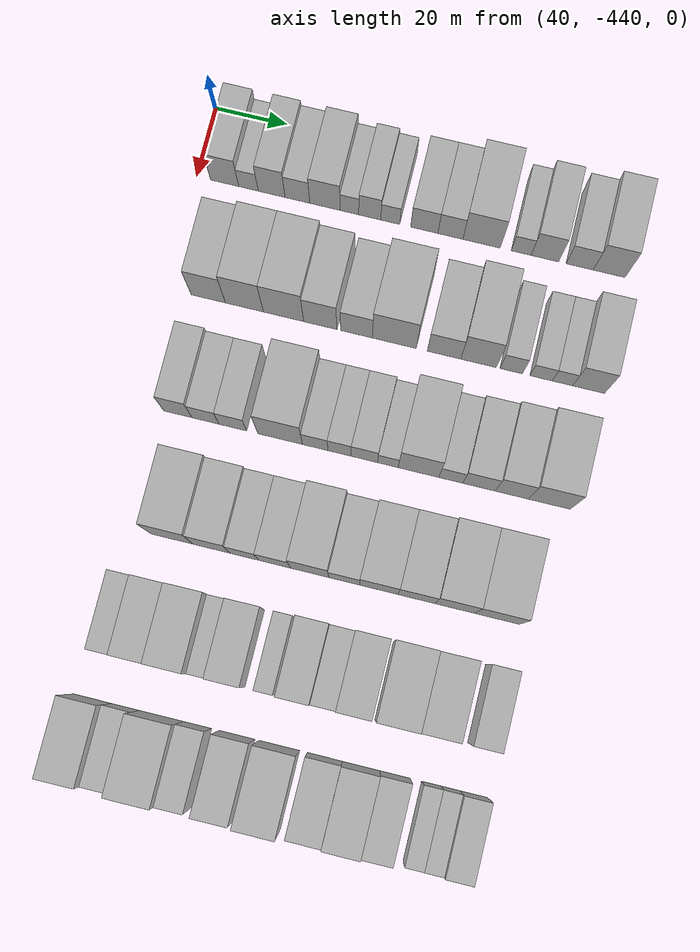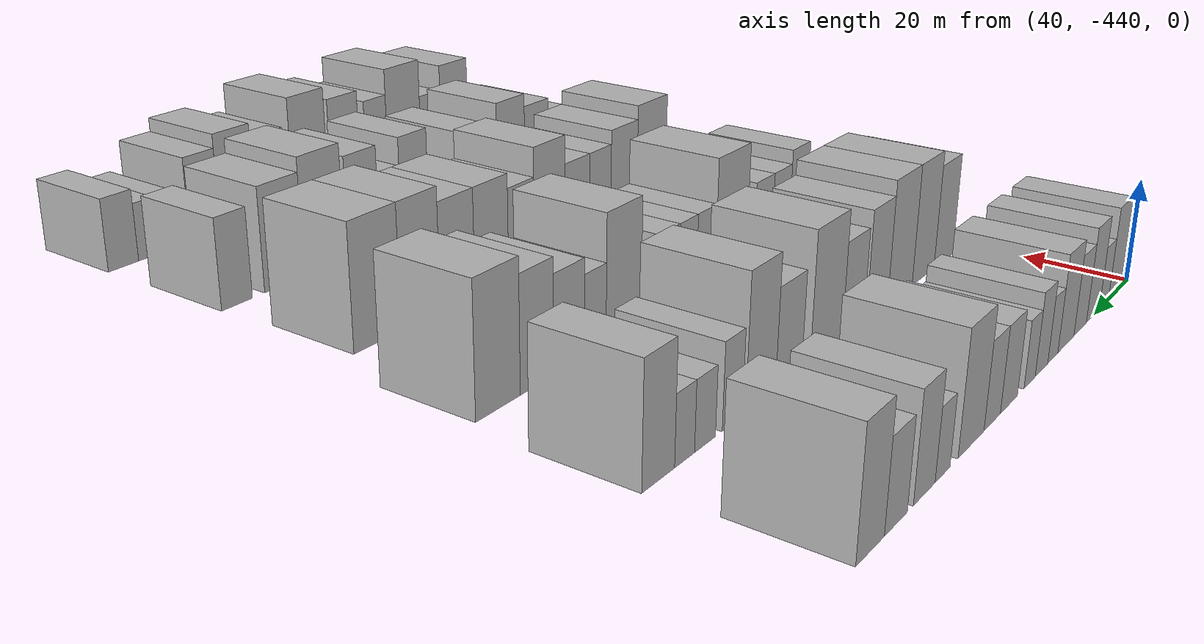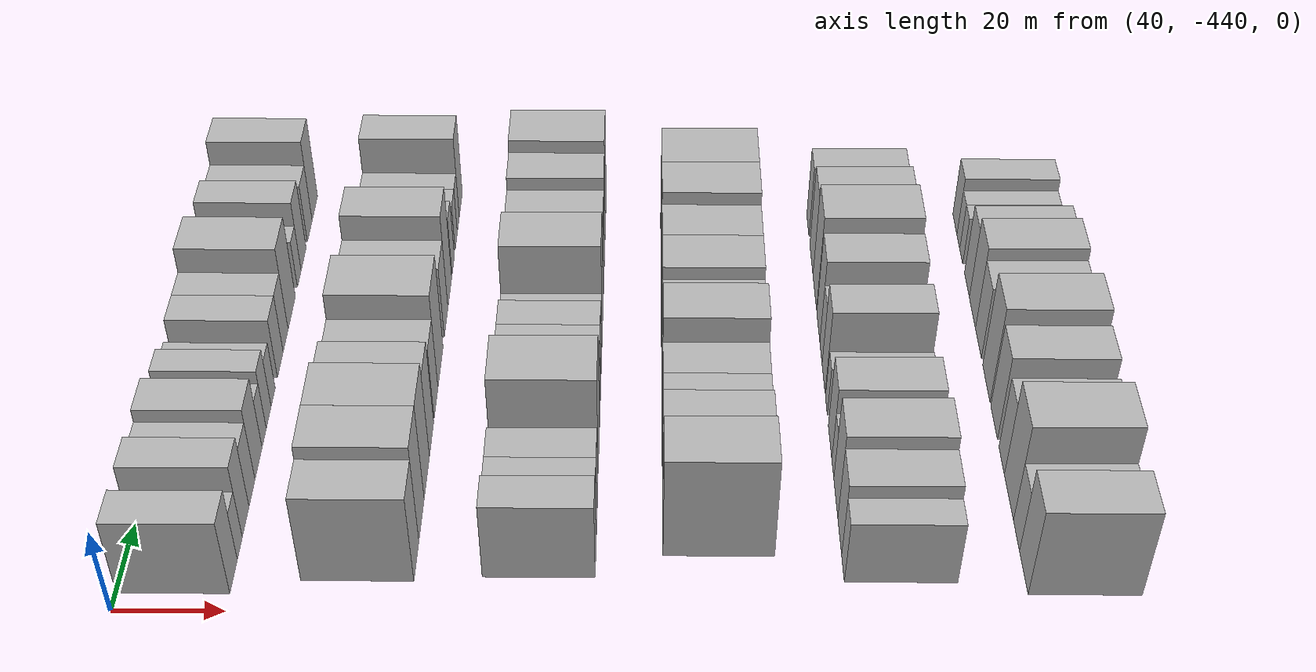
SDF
<sdf version="1.6">
 <world name="default">
  <model name="building_13">
   <static>1</static>
   <pose>50.0000 -432.1730 0 0.000000 0.000000 0.000000</pose>
   <link name="link">
    <pose>0 0 9.00 0 0 0</pose>
    <collision name="collision"><geometry><box><size>20.0000 7.7994 18.0000</size></box></geometry></collision>
    <visual name="visual">
     <cast_shadows>0</cast_shadows>
     <geometry><box><size>20.0000 7.7994 18.0000</size></box></geometry>
     <material>
      <script>
       <uri>model://HANNAS_wall/materials/scripts</uri>
       <uri>model://HANNAS_wall/materials/textures</uri>
       <name>vrc/HANNAS_wall</name>
      </script>
     </material>
    </visual>
   </link>
  </model>
  <model name="building_14">
   <static>1</static>
   <pose>50.0000 -425.5809 0 0.000000 0.000000 0.000000</pose>
   <link name="link">
    <pose>0 0 6.00 0 0 0</pose>
    <collision name="collision"><geometry><box><size>20.0000 5.3847 12.0000</size></box></geometry></collision>
    <visual name="visual">
     <cast_shadows>0</cast_shadows>
     <geometry><box><size>20.0000 5.3847 12.0000</size></box></geometry>
     <material>
      <script>
       <uri>model://HANNAS_wall/materials/scripts</uri>
       <uri>model://HANNAS_wall/materials/textures</uri>
       <name>vrc/HANNAS_wall</name>
      </script>
     </material>
    </visual>
   </link>
  </model>
  <model name="building_15">
   <static>1</static>
   <pose>50.0000 -419.1821 0 0.000000 0.000000 0.000000</pose>
   <link name="link">
    <pose>0 0 9.00 0 0 0</pose>
    <collision name="collision"><geometry><box><size>20.0000 7.4129 18.0000</size></box></geometry></collision>
    <visual name="visual">
     <cast_shadows>0</cast_shadows>
     <geometry><box><size>20.0000 7.4129 18.0000</size></box></geometry>
     <material>
      <script>
       <uri>model://HANNAS_wall/materials/scripts</uri>
       <uri>model://HANNAS_wall/materials/textures</uri>
       <name>vrc/HANNAS_wall</name>
      </script>
     </material>
    </visual>
   </link>
  </model>
  <model name="building_16">
   <static>1</static>
   <pose>50.0000 -412.0602 0 0.000000 0.000000 0.000000</pose>
   <link name="link">
    <pose>0 0 7.50 0 0 0</pose>
    <collision name="collision"><geometry><box><size>20.0000 6.8310 15.0000</size></box></geometry></collision>
    <visual name="visual">
     <cast_shadows>0</cast_shadows>
     <geometry><box><size>20.0000 6.8310 15.0000</size></box></geometry>
     <material>
      <script>
       <uri>model://HANNAS_wall/materials/scripts</uri>
       <uri>model://HANNAS_wall/materials/textures</uri>
       <name>vrc/HANNAS_wall</name>
      </script>
     </material>
    </visual>
   </link>
  </model>
  <model name="building_17">
   <static>1</static>
   <pose>50.0000 -404.4424 0 0.000000 0.000000 0.000000</pose>
   <link name="link">
    <pose>0 0 9.00 0 0 0</pose>
    <collision name="collision"><geometry><box><size>20.0000 8.4046 18.0000</size></box></geometry></collision>
    <visual name="visual">
     <cast_shadows>0</cast_shadows>
     <geometry><box><size>20.0000 8.4046 18.0000</size></box></geometry>
     <material>
      <script>
       <uri>model://HANNAS_wall/materials/scripts</uri>
       <uri>model://HANNAS_wall/materials/textures</uri>
       <name>vrc/HANNAS_wall</name>
      </script>
     </material>
    </visual>
   </link>
  </model>
  <model name="building_18">
   <static>1</static>
   <pose>50.0000 -397.7037 0 0.000000 0.000000 0.000000</pose>
   <link name="link">
    <pose>0 0 6.00 0 0 0</pose>
    <collision name="collision"><geometry><box><size>20.0000 5.0729 12.0000</size></box></geometry></collision>
    <visual name="visual">
     <cast_shadows>0</cast_shadows>
     <geometry><box><size>20.0000 5.0729 12.0000</size></box></geometry>
     <material>
      <script>
       <uri>model://HANNAS_wall/materials/scripts</uri>
       <uri>model://HANNAS_wall/materials/textures</uri>
       <name>vrc/HANNAS_wall</name>
      </script>
     </material>
    </visual>
   </link>
  </model>
  <model name="building_19">
   <static>1</static>
   <pose>50.0000 -392.1365 0 0.000000 0.000000 0.000000</pose>
   <link name="link">
    <pose>0 0 7.50 0 0 0</pose>
    <collision name="collision"><geometry><box><size>20.0000 6.0615 15.0000</size></box></geometry></collision>
    <visual name="visual">
     <cast_shadows>0</cast_shadows>
     <geometry><box><size>20.0000 6.0615 15.0000</size></box></geometry>
     <material>
      <script>
       <uri>model://HANNAS_wall/materials/scripts</uri>
       <uri>model://HANNAS_wall/materials/textures</uri>
       <name>vrc/HANNAS_wall</name>
      </script>
     </material>
    </visual>
   </link>
  </model>
  <model name="building_20">
   <static>1</static>
   <pose>50.0000 -386.4969 0 0.000000 0.000000 0.000000</pose>
   <link name="link">
    <pose>0 0 6.00 0 0 0</pose>
    <collision name="collision"><geometry><box><size>20.0000 5.2177 12.0000</size></box></geometry></collision>
    <visual name="visual">
     <cast_shadows>0</cast_shadows>
     <geometry><box><size>20.0000 5.2177 12.0000</size></box></geometry>
     <material>
      <script>
       <uri>model://HANNAS_wall/materials/scripts</uri>
       <uri>model://HANNAS_wall/materials/textures</uri>
       <name>vrc/HANNAS_wall</name>
      </script>
     </material>
    </visual>
   </link>
  </model>
  <model name="building_21">
   <static>1</static>
   <pose>50.0000 -377.1596 0 0.000000 0.000000 0.000000</pose>
   <link name="link">
    <pose>0 0 7.50 0 0 0</pose>
    <collision name="collision"><geometry><box><size>20.0000 7.4570 15.0000</size></box></geometry></collision>
    <visual name="visual">
     <cast_shadows>0</cast_shadows>
     <geometry><box><size>20.0000 7.4570 15.0000</size></box></geometry>
     <material>
      <script>
       <uri>model://HANNAS_wall/materials/scripts</uri>
       <uri>model://HANNAS_wall/materials/textures</uri>
       <name>vrc/HANNAS_wall</name>
      </script>
     </material>
    </visual>
   </link>
  </model>
  <model name="building_22">
   <static>1</static>
   <pose>50.0000 -370.0108 0 0.000000 0.000000 0.000000</pose>
   <link name="link">
    <pose>0 0 7.50 0 0 0</pose>
    <collision name="collision"><geometry><box><size>20.0000 6.8404 15.0000</size></box></geometry></collision>
    <visual name="visual">
     <cast_shadows>0</cast_shadows>
     <geometry><box><size>20.0000 6.8404 15.0000</size></box></geometry>
     <material>
      <script>
       <uri>model://HANNAS_wall/materials/scripts</uri>
       <uri>model://HANNAS_wall/materials/textures</uri>
       <name>vrc/HANNAS_wall</name>
      </script>
     </material>
    </visual>
   </link>
  </model>
  <model name="building_23">
   <static>1</static>
   <pose>50.0000 -361.4864 0 0.000000 0.000000 0.000000</pose>
   <link name="link">
    <pose>0 0 10.50 0 0 0</pose>
    <collision name="collision"><geometry><box><size>20.0000 10.2085 21.0000</size></box></geometry></collision>
    <visual name="visual">
     <cast_shadows>0</cast_shadows>
     <geometry><box><size>20.0000 10.2085 21.0000</size></box></geometry>
     <material>
      <script>
       <uri>model://HANNAS_wall/materials/scripts</uri>
       <uri>model://HANNAS_wall/materials/textures</uri>
       <name>vrc/HANNAS_wall</name>
      </script>
     </material>
    </visual>
   </link>
  </model>
  <model name="building_24">
   <static>1</static>
   <pose>50.0000 -350.6740 0 0.000000 0.000000 0.000000</pose>
   <link name="link">
    <pose>0 0 6.00 0 0 0</pose>
    <collision name="collision"><geometry><box><size>20.0000 5.4163 12.0000</size></box></geometry></collision>
    <visual name="visual">
     <cast_shadows>0</cast_shadows>
     <geometry><box><size>20.0000 5.4163 12.0000</size></box></geometry>
     <material>
      <script>
       <uri>model://HANNAS_wall/materials/scripts</uri>
       <uri>model://HANNAS_wall/materials/textures</uri>
       <name>vrc/HANNAS_wall</name>
      </script>
     </material>
    </visual>
   </link>
  </model>
  <model name="building_25">
   <static>1</static>
   <pose>50.0000 -344.2014 0 0.000000 0.000000 0.000000</pose>
   <link name="link">
    <pose>0 0 9.00 0 0 0</pose>
    <collision name="collision"><geometry><box><size>20.0000 7.5288 18.0000</size></box></geometry></collision>
    <visual name="visual">
     <cast_shadows>0</cast_shadows>
     <geometry><box><size>20.0000 7.5288 18.0000</size></box></geometry>
     <material>
      <script>
       <uri>model://HANNAS_wall/materials/scripts</uri>
       <uri>model://HANNAS_wall/materials/textures</uri>
       <name>vrc/HANNAS_wall</name>
      </script>
     </material>
    </visual>
   </link>
  </model>
  <model name="building_26">
   <static>1</static>
   <pose>50.0000 -334.7471 0 0.000000 0.000000 0.000000</pose>
   <link name="link">
    <pose>0 0 7.50 0 0 0</pose>
    <collision name="collision"><geometry><box><size>20.0000 7.3799 15.0000</size></box></geometry></collision>
    <visual name="visual">
     <cast_shadows>0</cast_shadows>
     <geometry><box><size>20.0000 7.3799 15.0000</size></box></geometry>
     <material>
      <script>
       <uri>model://HANNAS_wall/materials/scripts</uri>
       <uri>model://HANNAS_wall/materials/textures</uri>
       <name>vrc/HANNAS_wall</name>
      </script>
     </material>
    </visual>
   </link>
  </model>
  <model name="building_27">
   <static>1</static>
   <pose>50.0000 -326.7229 0 0.000000 0.000000 0.000000</pose>
   <link name="link">
    <pose>0 0 10.50 0 0 0</pose>
    <collision name="collision"><geometry><box><size>20.0000 8.6684 21.0000</size></box></geometry></collision>
    <visual name="visual">
     <cast_shadows>0</cast_shadows>
     <geometry><box><size>20.0000 8.6684 21.0000</size></box></geometry>
     <material>
      <script>
       <uri>model://HANNAS_wall/materials/scripts</uri>
       <uri>model://HANNAS_wall/materials/textures</uri>
       <name>vrc/HANNAS_wall</name>
      </script>
     </material>
    </visual>
   </link>
  </model>
  <model name="building_143">
   <static>1</static>
   <pose>82.0000 -428.2950 0 0.000000 0.000000 0.000000</pose>
   <link name="link">
    <pose>0 0 10.50 0 0 0</pose>
    <collision name="collision"><geometry><box><size>20.0000 9.3728 21.0000</size></box></geometry></collision>
    <visual name="visual">
     <cast_shadows>0</cast_shadows>
     <geometry><box><size>20.0000 9.3728 21.0000</size></box></geometry>
     <material>
      <script>
       <uri>model://HANNAS_wall/materials/scripts</uri>
       <uri>model://HANNAS_wall/materials/textures</uri>
       <name>vrc/HANNAS_wall</name>
      </script>
     </material>
    </visual>
   </link>
  </model>
  <model name="building_144">
   <static>1</static>
   <pose>82.0000 -418.4367 0 0.000000 0.000000 0.000000</pose>
   <link name="link">
    <pose>0 0 12.00 0 0 0</pose>
    <collision name="collision"><geometry><box><size>20.0000 10.3438 24.0000</size></box></geometry></collision>
    <visual name="visual">
     <cast_shadows>0</cast_shadows>
     <geometry><box><size>20.0000 10.3438 24.0000</size></box></geometry>
     <material>
      <script>
       <uri>model://HANNAS_wall/materials/scripts</uri>
       <uri>model://HANNAS_wall/materials/textures</uri>
       <name>vrc/HANNAS_wall</name>
      </script>
     </material>
    </visual>
   </link>
  </model>
  <model name="building_145">
   <static>1</static>
   <pose>82.0000 -407.7713 0 0.000000 0.000000 0.000000</pose>
   <link name="link">
    <pose>0 0 12.00 0 0 0</pose>
    <collision name="collision"><geometry><box><size>20.0000 10.9871 24.0000</size></box></geometry></collision>
    <visual name="visual">
     <cast_shadows>0</cast_shadows>
     <geometry><box><size>20.0000 10.9871 24.0000</size></box></geometry>
     <material>
      <script>
       <uri>model://HANNAS_wall/materials/scripts</uri>
       <uri>model://HANNAS_wall/materials/textures</uri>
       <name>vrc/HANNAS_wall</name>
      </script>
     </material>
    </visual>
   </link>
  </model>
  <model name="building_146">
   <static>1</static>
   <pose>82.0000 -397.7547 0 0.000000 0.000000 0.000000</pose>
   <link name="link">
    <pose>0 0 10.50 0 0 0</pose>
    <collision name="collision"><geometry><box><size>20.0000 9.0461 21.0000</size></box></geometry></collision>
    <visual name="visual">
     <cast_shadows>0</cast_shadows>
     <geometry><box><size>20.0000 9.0461 21.0000</size></box></geometry>
     <material>
      <script>
       <uri>model://HANNAS_wall/materials/scripts</uri>
       <uri>model://HANNAS_wall/materials/textures</uri>
       <name>vrc/HANNAS_wall</name>
      </script>
     </material>
    </visual>
   </link>
  </model>
  <model name="building_147">
   <static>1</static>
   <pose>82.0000 -387.9372 0 0.000000 0.000000 0.000000</pose>
   <link name="link">
    <pose>0 0 9.00 0 0 0</pose>
    <collision name="collision"><geometry><box><size>20.0000 8.5890 18.0000</size></box></geometry></collision>
    <visual name="visual">
     <cast_shadows>0</cast_shadows>
     <geometry><box><size>20.0000 8.5890 18.0000</size></box></geometry>
     <material>
      <script>
       <uri>model://HANNAS_wall/materials/scripts</uri>
       <uri>model://HANNAS_wall/materials/textures</uri>
       <name>vrc/HANNAS_wall</name>
      </script>
     </material>
    </visual>
   </link>
  </model>
  <model name="building_148">
   <static>1</static>
   <pose>82.0000 -377.6961 0 0.000000 0.000000 0.000000</pose>
   <link name="link">
    <pose>0 0 12.00 0 0 0</pose>
    <collision name="collision"><geometry><box><size>20.0000 11.8932 24.0000</size></box></geometry></collision>
    <visual name="visual">
     <cast_shadows>0</cast_shadows>
     <geometry><box><size>20.0000 11.8932 24.0000</size></box></geometry>
     <material>
      <script>
       <uri>model://HANNAS_wall/materials/scripts</uri>
       <uri>model://HANNAS_wall/materials/textures</uri>
       <name>vrc/HANNAS_wall</name>
      </script>
     </material>
    </visual>
   </link>
  </model>
  <model name="building_149">
   <static>1</static>
   <pose>82.0000 -364.2545 0 0.000000 0.000000 0.000000</pose>
   <link name="link">
    <pose>0 0 9.00 0 0 0</pose>
    <collision name="collision"><geometry><box><size>20.0000 8.9899 18.0000</size></box></geometry></collision>
    <visual name="visual">
     <cast_shadows>0</cast_shadows>
     <geometry><box><size>20.0000 8.9899 18.0000</size></box></geometry>
     <material>
      <script>
       <uri>model://HANNAS_wall/materials/scripts</uri>
       <uri>model://HANNAS_wall/materials/textures</uri>
       <name>vrc/HANNAS_wall</name>
      </script>
     </material>
    </visual>
   </link>
  </model>
  <model name="building_150">
   <static>1</static>
   <pose>82.0000 -354.9500 0 0.000000 0.000000 0.000000</pose>
   <link name="link">
    <pose>0 0 12.00 0 0 0</pose>
    <collision name="collision"><geometry><box><size>20.0000 9.6192 24.0000</size></box></geometry></collision>
    <visual name="visual">
     <cast_shadows>0</cast_shadows>
     <geometry><box><size>20.0000 9.6192 24.0000</size></box></geometry>
     <material>
      <script>
       <uri>model://HANNAS_wall/materials/scripts</uri>
       <uri>model://HANNAS_wall/materials/textures</uri>
       <name>vrc/HANNAS_wall</name>
      </script>
     </material>
    </visual>
   </link>
  </model>
  <model name="building_151">
   <static>1</static>
   <pose>82.0000 -346.1169 0 0.000000 0.000000 0.000000</pose>
   <link name="link">
    <pose>0 0 7.50 0 0 0</pose>
    <collision name="collision"><geometry><box><size>20.0000 6.0468 15.0000</size></box></geometry></collision>
    <visual name="visual">
     <cast_shadows>0</cast_shadows>
     <geometry><box><size>20.0000 6.0468 15.0000</size></box></geometry>
     <material>
      <script>
       <uri>model://HANNAS_wall/materials/scripts</uri>
       <uri>model://HANNAS_wall/materials/textures</uri>
       <name>vrc/HANNAS_wall</name>
      </script>
     </material>
    </visual>
   </link>
  </model>
  <model name="building_152">
   <static>1</static>
   <pose>82.0000 -338.1036 0 0.000000 0.000000 0.000000</pose>
   <link name="link">
    <pose>0 0 6.00 0 0 0</pose>
    <collision name="collision"><geometry><box><size>20.0000 5.9798 12.0000</size></box></geometry></collision>
    <visual name="visual">
     <cast_shadows>0</cast_shadows>
     <geometry><box><size>20.0000 5.9798 12.0000</size></box></geometry>
     <material>
      <script>
       <uri>model://HANNAS_wall/materials/scripts</uri>
       <uri>model://HANNAS_wall/materials/textures</uri>
       <name>vrc/HANNAS_wall</name>
      </script>
     </material>
    </visual>
   </link>
  </model>
  <model name="building_153">
   <static>1</static>
   <pose>82.0000 -332.3692 0 0.000000 0.000000 0.000000</pose>
   <link name="link">
    <pose>0 0 6.00 0 0 0</pose>
    <collision name="collision"><geometry><box><size>20.0000 5.4891 12.0000</size></box></geometry></collision>
    <visual name="visual">
     <cast_shadows>0</cast_shadows>
     <geometry><box><size>20.0000 5.4891 12.0000</size></box></geometry>
     <material>
      <script>
       <uri>model://HANNAS_wall/materials/scripts</uri>
       <uri>model://HANNAS_wall/materials/textures</uri>
       <name>vrc/HANNAS_wall</name>
      </script>
     </material>
    </visual>
   </link>
  </model>
  <model name="building_154">
   <static>1</static>
   <pose>82.0000 -325.3333 0 0.000000 0.000000 0.000000</pose>
   <link name="link">
    <pose>0 0 10.50 0 0 0</pose>
    <collision name="collision"><geometry><box><size>20.0000 8.5825 21.0000</size></box></geometry></collision>
    <visual name="visual">
     <cast_shadows>0</cast_shadows>
     <geometry><box><size>20.0000 8.5825 21.0000</size></box></geometry>
     <material>
      <script>
       <uri>model://HANNAS_wall/materials/scripts</uri>
       <uri>model://HANNAS_wall/materials/textures</uri>
       <name>vrc/HANNAS_wall</name>
      </script>
     </material>
    </visual>
   </link>
  </model>
  <model name="building_272">
   <static>1</static>
   <pose>114.0000 -428.0911 0 0.000000 0.000000 0.000000</pose>
   <link name="link">
    <pose>0 0 9.00 0 0 0</pose>
    <collision name="collision"><geometry><box><size>20.0000 7.6597 18.0000</size></box></geometry></collision>
    <visual name="visual">
     <cast_shadows>0</cast_shadows>
     <geometry><box><size>20.0000 7.6597 18.0000</size></box></geometry>
     <material>
      <script>
       <uri>model://HANNAS_wall/materials/scripts</uri>
       <uri>model://HANNAS_wall/materials/textures</uri>
       <name>vrc/HANNAS_wall</name>
      </script>
     </material>
    </visual>
   </link>
  </model>
  <model name="building_273">
   <static>1</static>
   <pose>114.0000 -420.5976 0 0.000000 0.000000 0.000000</pose>
   <link name="link">
    <pose>0 0 7.50 0 0 0</pose>
    <collision name="collision"><geometry><box><size>20.0000 7.3273 15.0000</size></box></geometry></collision>
    <visual name="visual">
     <cast_shadows>0</cast_shadows>
     <geometry><box><size>20.0000 7.3273 15.0000</size></box></geometry>
     <material>
      <script>
       <uri>model://HANNAS_wall/materials/scripts</uri>
       <uri>model://HANNAS_wall/materials/textures</uri>
       <name>vrc/HANNAS_wall</name>
      </script>
     </material>
    </visual>
   </link>
  </model>
  <model name="building_274">
   <static>1</static>
   <pose>114.0000 -413.2297 0 0.000000 0.000000 0.000000</pose>
   <link name="link">
    <pose>0 0 7.50 0 0 0</pose>
    <collision name="collision"><geometry><box><size>20.0000 7.4084 15.0000</size></box></geometry></collision>
    <visual name="visual">
     <cast_shadows>0</cast_shadows>
     <geometry><box><size>20.0000 7.4084 15.0000</size></box></geometry>
     <material>
      <script>
       <uri>model://HANNAS_wall/materials/scripts</uri>
       <uri>model://HANNAS_wall/materials/textures</uri>
       <name>vrc/HANNAS_wall</name>
      </script>
     </material>
    </visual>
   </link>
  </model>
  <model name="building_275">
   <static>1</static>
   <pose>114.0000 -400.5274 0 0.000000 0.000000 0.000000</pose>
   <link name="link">
    <pose>0 0 12.00 0 0 0</pose>
    <collision name="collision"><geometry><box><size>20.0000 11.9961 24.0000</size></box></geometry></collision>
    <visual name="visual">
     <cast_shadows>0</cast_shadows>
     <geometry><box><size>20.0000 11.9961 24.0000</size></box></geometry>
     <material>
      <script>
       <uri>model://HANNAS_wall/materials/scripts</uri>
       <uri>model://HANNAS_wall/materials/textures</uri>
       <name>vrc/HANNAS_wall</name>
      </script>
     </material>
    </visual>
   </link>
  </model>
  <model name="building_276">
   <static>1</static>
   <pose>114.0000 -391.1068 0 0.000000 0.000000 0.000000</pose>
   <link name="link">
    <pose>0 0 7.50 0 0 0</pose>
    <collision name="collision"><geometry><box><size>20.0000 6.8453 15.0000</size></box></geometry></collision>
    <visual name="visual">
     <cast_shadows>0</cast_shadows>
     <geometry><box><size>20.0000 6.8453 15.0000</size></box></geometry>
     <material>
      <script>
       <uri>model://HANNAS_wall/materials/scripts</uri>
       <uri>model://HANNAS_wall/materials/textures</uri>
       <name>vrc/HANNAS_wall</name>
      </script>
     </material>
    </visual>
   </link>
  </model>
  <model name="building_277">
   <static>1</static>
   <pose>114.0000 -384.5838 0 0.000000 0.000000 0.000000</pose>
   <link name="link">
    <pose>0 0 7.50 0 0 0</pose>
    <collision name="collision"><geometry><box><size>20.0000 6.2007 15.0000</size></box></geometry></collision>
    <visual name="visual">
     <cast_shadows>0</cast_shadows>
     <geometry><box><size>20.0000 6.2007 15.0000</size></box></geometry>
     <material>
      <script>
       <uri>model://HANNAS_wall/materials/scripts</uri>
       <uri>model://HANNAS_wall/materials/textures</uri>
       <name>vrc/HANNAS_wall</name>
      </script>
     </material>
    </visual>
   </link>
  </model>
  <model name="building_278">
   <static>1</static>
   <pose>114.0000 -377.9591 0 0.000000 0.000000 0.000000</pose>
   <link name="link">
    <pose>0 0 7.50 0 0 0</pose>
    <collision name="collision"><geometry><box><size>20.0000 7.0487 15.0000</size></box></geometry></collision>
    <visual name="visual">
     <cast_shadows>0</cast_shadows>
     <geometry><box><size>20.0000 7.0487 15.0000</size></box></geometry>
     <material>
      <script>
       <uri>model://HANNAS_wall/materials/scripts</uri>
       <uri>model://HANNAS_wall/materials/textures</uri>
       <name>vrc/HANNAS_wall</name>
      </script>
     </material>
    </visual>
   </link>
  </model>
  <model name="building_279">
   <static>1</static>
   <pose>114.0000 -371.6705 0 0.000000 0.000000 0.000000</pose>
   <link name="link">
    <pose>0 0 6.00 0 0 0</pose>
    <collision name="collision"><geometry><box><size>20.0000 5.5284 12.0000</size></box></geometry></collision>
    <visual name="visual">
     <cast_shadows>0</cast_shadows>
     <geometry><box><size>20.0000 5.5284 12.0000</size></box></geometry>
     <material>
      <script>
       <uri>model://HANNAS_wall/materials/scripts</uri>
       <uri>model://HANNAS_wall/materials/textures</uri>
       <name>vrc/HANNAS_wall</name>
      </script>
     </material>
    </visual>
   </link>
  </model>
  <model name="building_280">
   <static>1</static>
   <pose>114.0000 -363.5157 0 0.000000 0.000000 0.000000</pose>
   <link name="link">
    <pose>0 0 12.00 0 0 0</pose>
    <collision name="collision"><geometry><box><size>20.0000 10.7811 24.0000</size></box></geometry></collision>
    <visual name="visual">
     <cast_shadows>0</cast_shadows>
     <geometry><box><size>20.0000 10.7811 24.0000</size></box></geometry>
     <material>
      <script>
       <uri>model://HANNAS_wall/materials/scripts</uri>
       <uri>model://HANNAS_wall/materials/textures</uri>
       <name>vrc/HANNAS_wall</name>
      </script>
     </material>
    </visual>
   </link>
  </model>
  <model name="building_281">
   <static>1</static>
   <pose>114.0000 -354.9187 0 0.000000 0.000000 0.000000</pose>
   <link name="link">
    <pose>0 0 7.50 0 0 0</pose>
    <collision name="collision"><geometry><box><size>20.0000 6.4128 15.0000</size></box></geometry></collision>
    <visual name="visual">
     <cast_shadows>0</cast_shadows>
     <geometry><box><size>20.0000 6.4128 15.0000</size></box></geometry>
     <material>
      <script>
       <uri>model://HANNAS_wall/materials/scripts</uri>
       <uri>model://HANNAS_wall/materials/textures</uri>
       <name>vrc/HANNAS_wall</name>
      </script>
     </material>
    </visual>
   </link>
  </model>
  <model name="building_282">
   <static>1</static>
   <pose>114.0000 -347.4107 0 0.000000 0.000000 0.000000</pose>
   <link name="link">
    <pose>0 0 9.00 0 0 0</pose>
    <collision name="collision"><geometry><box><size>20.0000 8.6032 18.0000</size></box></geometry></collision>
    <visual name="visual">
     <cast_shadows>0</cast_shadows>
     <geometry><box><size>20.0000 8.6032 18.0000</size></box></geometry>
     <material>
      <script>
       <uri>model://HANNAS_wall/materials/scripts</uri>
       <uri>model://HANNAS_wall/materials/textures</uri>
       <name>vrc/HANNAS_wall</name>
      </script>
     </material>
    </visual>
   </link>
  </model>
  <model name="building_283">
   <static>1</static>
   <pose>114.0000 -338.7049 0 0.000000 0.000000 0.000000</pose>
   <link name="link">
    <pose>0 0 10.50 0 0 0</pose>
    <collision name="collision"><geometry><box><size>20.0000 8.8086 21.0000</size></box></geometry></collision>
    <visual name="visual">
     <cast_shadows>0</cast_shadows>
     <geometry><box><size>20.0000 8.8086 21.0000</size></box></geometry>
     <material>
      <script>
       <uri>model://HANNAS_wall/materials/scripts</uri>
       <uri>model://HANNAS_wall/materials/textures</uri>
       <name>vrc/HANNAS_wall</name>
      </script>
     </material>
    </visual>
   </link>
  </model>
  <model name="building_284">
   <static>1</static>
   <pose>114.0000 -328.7453 0 0.000000 0.000000 0.000000</pose>
   <link name="link">
    <pose>0 0 12.00 0 0 0</pose>
    <collision name="collision"><geometry><box><size>20.0000 11.1106 24.0000</size></box></geometry></collision>
    <visual name="visual">
     <cast_shadows>0</cast_shadows>
     <geometry><box><size>20.0000 11.1106 24.0000</size></box></geometry>
     <material>
      <script>
       <uri>model://HANNAS_wall/materials/scripts</uri>
       <uri>model://HANNAS_wall/materials/textures</uri>
       <name>vrc/HANNAS_wall</name>
      </script>
     </material>
    </visual>
   </link>
  </model>
  <model name="building_395">
   <static>1</static>
   <pose>146.0000 -421.0519 0 0.000000 0.000000 0.000000</pose>
   <link name="link">
    <pose>0 0 12.00 0 0 0</pose>
    <collision name="collision"><geometry><box><size>20.0000 11.3019 24.0000</size></box></geometry></collision>
    <visual name="visual">
     <cast_shadows>0</cast_shadows>
     <geometry><box><size>20.0000 11.3019 24.0000</size></box></geometry>
     <material>
      <script>
       <uri>model://HANNAS_wall/materials/scripts</uri>
       <uri>model://HANNAS_wall/materials/textures</uri>
       <name>vrc/HANNAS_wall</name>
      </script>
     </material>
    </visual>
   </link>
  </model>
  <model name="building_396">
   <static>1</static>
   <pose>146.0000 -410.5173 0 0.000000 0.000000 0.000000</pose>
   <link name="link">
    <pose>0 0 10.50 0 0 0</pose>
    <collision name="collision"><geometry><box><size>20.0000 9.7673 21.0000</size></box></geometry></collision>
    <visual name="visual">
     <cast_shadows>0</cast_shadows>
     <geometry><box><size>20.0000 9.7673 21.0000</size></box></geometry>
     <material>
      <script>
       <uri>model://HANNAS_wall/materials/scripts</uri>
       <uri>model://HANNAS_wall/materials/textures</uri>
       <name>vrc/HANNAS_wall</name>
      </script>
     </material>
    </visual>
   </link>
  </model>
  <model name="building_397">
   <static>1</static>
   <pose>146.0000 -401.8488 0 0.000000 0.000000 0.000000</pose>
   <link name="link">
    <pose>0 0 9.00 0 0 0</pose>
    <collision name="collision"><geometry><box><size>20.0000 7.5696 18.0000</size></box></geometry></collision>
    <visual name="visual">
     <cast_shadows>0</cast_shadows>
     <geometry><box><size>20.0000 7.5696 18.0000</size></box></geometry>
     <material>
      <script>
       <uri>model://HANNAS_wall/materials/scripts</uri>
       <uri>model://HANNAS_wall/materials/textures</uri>
       <name>vrc/HANNAS_wall</name>
      </script>
     </material>
    </visual>
   </link>
  </model>
  <model name="building_398">
   <static>1</static>
   <pose>146.0000 -393.8298 0 0.000000 0.000000 0.000000</pose>
   <link name="link">
    <pose>0 0 9.00 0 0 0</pose>
    <collision name="collision"><geometry><box><size>20.0000 8.4684 18.0000</size></box></geometry></collision>
    <visual name="visual">
     <cast_shadows>0</cast_shadows>
     <geometry><box><size>20.0000 8.4684 18.0000</size></box></geometry>
     <material>
      <script>
       <uri>model://HANNAS_wall/materials/scripts</uri>
       <uri>model://HANNAS_wall/materials/textures</uri>
       <name>vrc/HANNAS_wall</name>
      </script>
     </material>
    </visual>
   </link>
  </model>
  <model name="building_399">
   <static>1</static>
   <pose>146.0000 -384.5340 0 0.000000 0.000000 0.000000</pose>
   <link name="link">
    <pose>0 0 12.00 0 0 0</pose>
    <collision name="collision"><geometry><box><size>20.0000 10.1233 24.0000</size></box></geometry></collision>
    <visual name="visual">
     <cast_shadows>0</cast_shadows>
     <geometry><box><size>20.0000 10.1233 24.0000</size></box></geometry>
     <material>
      <script>
       <uri>model://HANNAS_wall/materials/scripts</uri>
       <uri>model://HANNAS_wall/materials/textures</uri>
       <name>vrc/HANNAS_wall</name>
      </script>
     </material>
    </visual>
   </link>
  </model>
  <model name="building_400">
   <static>1</static>
   <pose>146.0000 -375.4315 0 0.000000 0.000000 0.000000</pose>
   <link name="link">
    <pose>0 0 9.00 0 0 0</pose>
    <collision name="collision"><geometry><box><size>20.0000 8.0817 18.0000</size></box></geometry></collision>
    <visual name="visual">
     <cast_shadows>0</cast_shadows>
     <geometry><box><size>20.0000 8.0817 18.0000</size></box></geometry>
     <material>
      <script>
       <uri>model://HANNAS_wall/materials/scripts</uri>
       <uri>model://HANNAS_wall/materials/textures</uri>
       <name>vrc/HANNAS_wall</name>
      </script>
     </material>
    </visual>
   </link>
  </model>
  <model name="building_401">
   <static>1</static>
   <pose>146.0000 -366.3788 0 0.000000 0.000000 0.000000</pose>
   <link name="link">
    <pose>0 0 10.50 0 0 0</pose>
    <collision name="collision"><geometry><box><size>20.0000 10.0237 21.0000</size></box></geometry></collision>
    <visual name="visual">
     <cast_shadows>0</cast_shadows>
     <geometry><box><size>20.0000 10.0237 21.0000</size></box></geometry>
     <material>
      <script>
       <uri>model://HANNAS_wall/materials/scripts</uri>
       <uri>model://HANNAS_wall/materials/textures</uri>
       <name>vrc/HANNAS_wall</name>
      </script>
     </material>
    </visual>
   </link>
  </model>
  <model name="building_402">
   <static>1</static>
   <pose>146.0000 -356.4903 0 0.000000 0.000000 0.000000</pose>
   <link name="link">
    <pose>0 0 10.50 0 0 0</pose>
    <collision name="collision"><geometry><box><size>20.0000 9.7532 21.0000</size></box></geometry></collision>
    <visual name="visual">
     <cast_shadows>0</cast_shadows>
     <geometry><box><size>20.0000 9.7532 21.0000</size></box></geometry>
     <material>
      <script>
       <uri>model://HANNAS_wall/materials/scripts</uri>
       <uri>model://HANNAS_wall/materials/textures</uri>
       <name>vrc/HANNAS_wall</name>
      </script>
     </material>
    </visual>
   </link>
  </model>
  <model name="building_403">
   <static>1</static>
   <pose>146.0000 -346.3970 0 0.000000 0.000000 0.000000</pose>
   <link name="link">
    <pose>0 0 12.00 0 0 0</pose>
    <collision name="collision"><geometry><box><size>20.0000 10.4333 24.0000</size></box></geometry></collision>
    <visual name="visual">
     <cast_shadows>0</cast_shadows>
     <geometry><box><size>20.0000 10.4333 24.0000</size></box></geometry>
     <material>
      <script>
       <uri>model://HANNAS_wall/materials/scripts</uri>
       <uri>model://HANNAS_wall/materials/textures</uri>
       <name>vrc/HANNAS_wall</name>
      </script>
     </material>
    </visual>
   </link>
  </model>
  <model name="building_404">
   <static>1</static>
   <pose>146.0000 -335.3133 0 0.000000 0.000000 0.000000</pose>
   <link name="link">
    <pose>0 0 12.00 0 0 0</pose>
    <collision name="collision"><geometry><box><size>20.0000 11.7341 24.0000</size></box></geometry></collision>
    <visual name="visual">
     <cast_shadows>0</cast_shadows>
     <geometry><box><size>20.0000 11.7341 24.0000</size></box></geometry>
     <material>
      <script>
       <uri>model://HANNAS_wall/materials/scripts</uri>
       <uri>model://HANNAS_wall/materials/textures</uri>
       <name>vrc/HANNAS_wall</name>
      </script>
     </material>
    </visual>
   </link>
  </model>
  <model name="building_507">
   <static>1</static>
   <pose>178.0000 -429.4739 0 0.000000 0.000000 0.000000</pose>
   <link name="link">
    <pose>0 0 7.50 0 0 0</pose>
    <collision name="collision"><geometry><box><size>20.0000 6.2206 15.0000</size></box></geometry></collision>
    <visual name="visual">
     <cast_shadows>0</cast_shadows>
     <geometry><box><size>20.0000 6.2206 15.0000</size></box></geometry>
     <material>
      <script>
       <uri>model://HANNAS_wall/materials/scripts</uri>
       <uri>model://HANNAS_wall/materials/textures</uri>
       <name>vrc/HANNAS_wall</name>
      </script>
     </material>
    </visual>
   </link>
  </model>
  <model name="building_508">
   <static>1</static>
   <pose>178.0000 -421.8782 0 0.000000 0.000000 0.000000</pose>
   <link name="link">
    <pose>0 0 9.00 0 0 0</pose>
    <collision name="collision"><geometry><box><size>20.0000 8.9708 18.0000</size></box></geometry></collision>
    <visual name="visual">
     <cast_shadows>0</cast_shadows>
     <geometry><box><size>20.0000 8.9708 18.0000</size></box></geometry>
     <material>
      <script>
       <uri>model://HANNAS_wall/materials/scripts</uri>
       <uri>model://HANNAS_wall/materials/textures</uri>
       <name>vrc/HANNAS_wall</name>
      </script>
     </material>
    </visual>
   </link>
  </model>
  <model name="building_509">
   <static>1</static>
   <pose>178.0000 -412.4404 0 0.000000 0.000000 0.000000</pose>
   <link name="link">
    <pose>0 0 10.50 0 0 0</pose>
    <collision name="collision"><geometry><box><size>20.0000 9.9049 21.0000</size></box></geometry></collision>
    <visual name="visual">
     <cast_shadows>0</cast_shadows>
     <geometry><box><size>20.0000 9.9049 21.0000</size></box></geometry>
     <material>
      <script>
       <uri>model://HANNAS_wall/materials/scripts</uri>
       <uri>model://HANNAS_wall/materials/textures</uri>
       <name>vrc/HANNAS_wall</name>
      </script>
     </material>
    </visual>
   </link>
  </model>
  <model name="building_510">
   <static>1</static>
   <pose>178.0000 -404.9702 0 0.000000 0.000000 0.000000</pose>
   <link name="link">
    <pose>0 0 6.00 0 0 0</pose>
    <collision name="collision"><geometry><box><size>20.0000 5.0353 12.0000</size></box></geometry></collision>
    <visual name="visual">
     <cast_shadows>0</cast_shadows>
     <geometry><box><size>20.0000 5.0353 12.0000</size></box></geometry>
     <material>
      <script>
       <uri>model://HANNAS_wall/materials/scripts</uri>
       <uri>model://HANNAS_wall/materials/textures</uri>
       <name>vrc/HANNAS_wall</name>
      </script>
     </material>
    </visual>
   </link>
  </model>
  <model name="building_511">
   <static>1</static>
   <pose>178.0000 -397.9670 0 0.000000 0.000000 0.000000</pose>
   <link name="link">
    <pose>0 0 9.00 0 0 0</pose>
    <collision name="collision"><geometry><box><size>20.0000 8.9711 18.0000</size></box></geometry></collision>
    <visual name="visual">
     <cast_shadows>0</cast_shadows>
     <geometry><box><size>20.0000 8.9711 18.0000</size></box></geometry>
     <material>
      <script>
       <uri>model://HANNAS_wall/materials/scripts</uri>
       <uri>model://HANNAS_wall/materials/textures</uri>
       <name>vrc/HANNAS_wall</name>
      </script>
     </material>
    </visual>
   </link>
  </model>
  <model name="building_512">
   <static>1</static>
   <pose>178.0000 -388.0207 0 0.000000 0.000000 0.000000</pose>
   <link name="link">
    <pose>0 0 6.00 0 0 0</pose>
    <collision name="collision"><geometry><box><size>20.0000 4.9215 12.0000</size></box></geometry></collision>
    <visual name="visual">
     <cast_shadows>0</cast_shadows>
     <geometry><box><size>20.0000 4.9215 12.0000</size></box></geometry>
     <material>
      <script>
       <uri>model://HANNAS_wall/materials/scripts</uri>
       <uri>model://HANNAS_wall/materials/textures</uri>
       <name>vrc/HANNAS_wall</name>
      </script>
     </material>
    </visual>
   </link>
  </model>
  <model name="building_513">
   <static>1</static>
   <pose>178.0000 -380.3240 0 0.000000 0.000000 0.000000</pose>
   <link name="link">
    <pose>0 0 10.50 0 0 0</pose>
    <collision name="collision"><geometry><box><size>20.0000 8.4720 21.0000</size></box></geometry></collision>
    <visual name="visual">
     <cast_shadows>0</cast_shadows>
     <geometry><box><size>20.0000 8.4720 21.0000</size></box></geometry>
     <material>
      <script>
       <uri>model://HANNAS_wall/materials/scripts</uri>
       <uri>model://HANNAS_wall/materials/textures</uri>
       <name>vrc/HANNAS_wall</name>
      </script>
     </material>
    </visual>
   </link>
  </model>
  <model name="building_514">
   <static>1</static>
   <pose>178.0000 -372.8277 0 0.000000 0.000000 0.000000</pose>
   <link name="link">
    <pose>0 0 7.50 0 0 0</pose>
    <collision name="collision"><geometry><box><size>20.0000 6.5206 15.0000</size></box></geometry></collision>
    <visual name="visual">
     <cast_shadows>0</cast_shadows>
     <geometry><box><size>20.0000 6.5206 15.0000</size></box></geometry>
     <material>
      <script>
       <uri>model://HANNAS_wall/materials/scripts</uri>
       <uri>model://HANNAS_wall/materials/textures</uri>
       <name>vrc/HANNAS_wall</name>
      </script>
     </material>
    </visual>
   </link>
  </model>
  <model name="building_515">
   <static>1</static>
   <pose>178.0000 -365.0911 0 0.000000 0.000000 0.000000</pose>
   <link name="link">
    <pose>0 0 10.50 0 0 0</pose>
    <collision name="collision"><geometry><box><size>20.0000 8.9526 21.0000</size></box></geometry></collision>
    <visual name="visual">
     <cast_shadows>0</cast_shadows>
     <geometry><box><size>20.0000 8.9526 21.0000</size></box></geometry>
     <material>
      <script>
       <uri>model://HANNAS_wall/materials/scripts</uri>
       <uri>model://HANNAS_wall/materials/textures</uri>
       <name>vrc/HANNAS_wall</name>
      </script>
     </material>
    </visual>
   </link>
  </model>
  <model name="building_516">
   <static>1</static>
   <pose>178.0000 -354.1435 0 0.000000 0.000000 0.000000</pose>
   <link name="link">
    <pose>0 0 12.00 0 0 0</pose>
    <collision name="collision"><geometry><box><size>20.0000 10.9425 24.0000</size></box></geometry></collision>
    <visual name="visual">
     <cast_shadows>0</cast_shadows>
     <geometry><box><size>20.0000 10.9425 24.0000</size></box></geometry>
     <material>
      <script>
       <uri>model://HANNAS_wall/materials/scripts</uri>
       <uri>model://HANNAS_wall/materials/textures</uri>
       <name>vrc/HANNAS_wall</name>
      </script>
     </material>
    </visual>
   </link>
  </model>
  <model name="building_517">
   <static>1</static>
   <pose>178.0000 -343.6137 0 0.000000 0.000000 0.000000</pose>
   <link name="link">
    <pose>0 0 10.50 0 0 0</pose>
    <collision name="collision"><geometry><box><size>20.0000 10.1171 21.0000</size></box></geometry></collision>
    <visual name="visual">
     <cast_shadows>0</cast_shadows>
     <geometry><box><size>20.0000 10.1171 21.0000</size></box></geometry>
     <material>
      <script>
       <uri>model://HANNAS_wall/materials/scripts</uri>
       <uri>model://HANNAS_wall/materials/textures</uri>
       <name>vrc/HANNAS_wall</name>
      </script>
     </material>
    </visual>
   </link>
  </model>
  <model name="building_518">
   <static>1</static>
   <pose>178.0000 -331.8800 0 0.000000 0.000000 0.000000</pose>
   <link name="link">
    <pose>0 0 9.00 0 0 0</pose>
    <collision name="collision"><geometry><box><size>20.0000 7.3503 18.0000</size></box></geometry></collision>
    <visual name="visual">
     <cast_shadows>0</cast_shadows>
     <geometry><box><size>20.0000 7.3503 18.0000</size></box></geometry>
     <material>
      <script>
       <uri>model://HANNAS_wall/materials/scripts</uri>
       <uri>model://HANNAS_wall/materials/textures</uri>
       <name>vrc/HANNAS_wall</name>
      </script>
     </material>
    </visual>
   </link>
  </model>
  <model name="building_637">
   <static>1</static>
   <pose>210.0000 -430.1632 0 0.000000 0.000000 0.000000</pose>
   <link name="link">
    <pose>0 0 10.50 0 0 0</pose>
    <collision name="collision"><geometry><box><size>20.0000 10.0518 21.0000</size></box></geometry></collision>
    <visual name="visual">
     <cast_shadows>0</cast_shadows>
     <geometry><box><size>20.0000 10.0518 21.0000</size></box></geometry>
     <material>
      <script>
       <uri>model://HANNAS_wall/materials/scripts</uri>
       <uri>model://HANNAS_wall/materials/textures</uri>
       <name>vrc/HANNAS_wall</name>
      </script>
     </material>
    </visual>
   </link>
  </model>
  <model name="building_638">
   <static>1</static>
   <pose>210.0000 -421.4575 0 0.000000 0.000000 0.000000</pose>
   <link name="link">
    <pose>0 0 7.50 0 0 0</pose>
    <collision name="collision"><geometry><box><size>20.0000 7.3596 15.0000</size></box></geometry></collision>
    <visual name="visual">
     <cast_shadows>0</cast_shadows>
     <geometry><box><size>20.0000 7.3596 15.0000</size></box></geometry>
     <material>
      <script>
       <uri>model://HANNAS_wall/materials/scripts</uri>
       <uri>model://HANNAS_wall/materials/textures</uri>
       <name>vrc/HANNAS_wall</name>
      </script>
     </material>
    </visual>
   </link>
  </model>
  <model name="building_639">
   <static>1</static>
   <pose>210.0000 -412.0075 0 0.000000 0.000000 0.000000</pose>
   <link name="link">
    <pose>0 0 12.00 0 0 0</pose>
    <collision name="collision"><geometry><box><size>20.0000 11.5404 24.0000</size></box></geometry></collision>
    <visual name="visual">
     <cast_shadows>0</cast_shadows>
     <geometry><box><size>20.0000 11.5404 24.0000</size></box></geometry>
     <material>
      <script>
       <uri>model://HANNAS_wall/materials/scripts</uri>
       <uri>model://HANNAS_wall/materials/textures</uri>
       <name>vrc/HANNAS_wall</name>
      </script>
     </material>
    </visual>
   </link>
  </model>
  <model name="building_640">
   <static>1</static>
   <pose>210.0000 -402.6266 0 0.000000 0.000000 0.000000</pose>
   <link name="link">
    <pose>0 0 9.00 0 0 0</pose>
    <collision name="collision"><geometry><box><size>20.0000 7.2214 18.0000</size></box></geometry></collision>
    <visual name="visual">
     <cast_shadows>0</cast_shadows>
     <geometry><box><size>20.0000 7.2214 18.0000</size></box></geometry>
     <material>
      <script>
       <uri>model://HANNAS_wall/materials/scripts</uri>
       <uri>model://HANNAS_wall/materials/textures</uri>
       <name>vrc/HANNAS_wall</name>
      </script>
     </material>
    </visual>
   </link>
  </model>
  <model name="building_641">
   <static>1</static>
   <pose>210.0000 -392.3801 0 0.000000 0.000000 0.000000</pose>
   <link name="link">
    <pose>0 0 10.50 0 0 0</pose>
    <collision name="collision"><geometry><box><size>20.0000 9.2716 21.0000</size></box></geometry></collision>
    <visual name="visual">
     <cast_shadows>0</cast_shadows>
     <geometry><box><size>20.0000 9.2716 21.0000</size></box></geometry>
     <material>
      <script>
       <uri>model://HANNAS_wall/materials/scripts</uri>
       <uri>model://HANNAS_wall/materials/textures</uri>
       <name>vrc/HANNAS_wall</name>
      </script>
     </material>
    </visual>
   </link>
  </model>
  <model name="building_642">
   <static>1</static>
   <pose>210.0000 -381.4355 0 0.000000 0.000000 0.000000</pose>
   <link name="link">
    <pose>0 0 12.00 0 0 0</pose>
    <collision name="collision"><geometry><box><size>20.0000 10.6175 24.0000</size></box></geometry></collision>
    <visual name="visual">
     <cast_shadows>0</cast_shadows>
     <geometry><box><size>20.0000 10.6175 24.0000</size></box></geometry>
     <material>
      <script>
       <uri>model://HANNAS_wall/materials/scripts</uri>
       <uri>model://HANNAS_wall/materials/textures</uri>
       <name>vrc/HANNAS_wall</name>
      </script>
     </material>
    </visual>
   </link>
  </model>
  <model name="building_643">
   <static>1</static>
   <pose>210.0000 -369.6488 0 0.000000 0.000000 0.000000</pose>
   <link name="link">
    <pose>0 0 9.00 0 0 0</pose>
    <collision name="collision"><geometry><box><size>20.0000 8.9558 18.0000</size></box></geometry></collision>
    <visual name="visual">
     <cast_shadows>0</cast_shadows>
     <geometry><box><size>20.0000 8.9558 18.0000</size></box></geometry>
     <material>
      <script>
       <uri>model://HANNAS_wall/materials/scripts</uri>
       <uri>model://HANNAS_wall/materials/textures</uri>
       <name>vrc/HANNAS_wall</name>
      </script>
     </material>
    </visual>
   </link>
  </model>
  <model name="building_644">
   <static>1</static>
   <pose>210.0000 -360.3503 0 0.000000 0.000000 0.000000</pose>
   <link name="link">
    <pose>0 0 10.50 0 0 0</pose>
    <collision name="collision"><geometry><box><size>20.0000 9.6414 21.0000</size></box></geometry></collision>
    <visual name="visual">
     <cast_shadows>0</cast_shadows>
     <geometry><box><size>20.0000 9.6414 21.0000</size></box></geometry>
     <material>
      <script>
       <uri>model://HANNAS_wall/materials/scripts</uri>
       <uri>model://HANNAS_wall/materials/textures</uri>
       <name>vrc/HANNAS_wall</name>
      </script>
     </material>
    </visual>
   </link>
  </model>
  <model name="building_645">
   <static>1</static>
   <pose>210.0000 -351.5739 0 0.000000 0.000000 0.000000</pose>
   <link name="link">
    <pose>0 0 9.00 0 0 0</pose>
    <collision name="collision"><geometry><box><size>20.0000 7.9114 18.0000</size></box></geometry></collision>
    <visual name="visual">
     <cast_shadows>0</cast_shadows>
     <geometry><box><size>20.0000 7.9114 18.0000</size></box></geometry>
     <material>
      <script>
       <uri>model://HANNAS_wall/materials/scripts</uri>
       <uri>model://HANNAS_wall/materials/textures</uri>
       <name>vrc/HANNAS_wall</name>
      </script>
     </material>
    </visual>
   </link>
  </model>
  <model name="building_646">
   <static>1</static>
   <pose>210.0000 -342.1616 0 0.000000 0.000000 0.000000</pose>
   <link name="link">
    <pose>0 0 6.00 0 0 0</pose>
    <collision name="collision"><geometry><box><size>20.0000 4.9132 12.0000</size></box></geometry></collision>
    <visual name="visual">
     <cast_shadows>0</cast_shadows>
     <geometry><box><size>20.0000 4.9132 12.0000</size></box></geometry>
     <material>
      <script>
       <uri>model://HANNAS_wall/materials/scripts</uri>
       <uri>model://HANNAS_wall/materials/textures</uri>
       <name>vrc/HANNAS_wall</name>
      </script>
     </material>
    </visual>
   </link>
  </model>
  <model name="building_647">
   <static>1</static>
   <pose>210.0000 -337.2433 0 0.000000 0.000000 0.000000</pose>
   <link name="link">
    <pose>0 0 6.00 0 0 0</pose>
    <collision name="collision"><geometry><box><size>20.0000 4.9234 12.0000</size></box></geometry></collision>
    <visual name="visual">
     <cast_shadows>0</cast_shadows>
     <geometry><box><size>20.0000 4.9234 12.0000</size></box></geometry>
     <material>
      <script>
       <uri>model://HANNAS_wall/materials/scripts</uri>
       <uri>model://HANNAS_wall/materials/textures</uri>
       <name>vrc/HANNAS_wall</name>
      </script>
     </material>
    </visual>
   </link>
  </model>
  <model name="building_648">
   <static>1</static>
   <pose>210.0000 -331.2113 0 0.000000 0.000000 0.000000</pose>
   <link name="link">
    <pose>0 0 7.50 0 0 0</pose>
    <collision name="collision"><geometry><box><size>20.0000 7.1405 15.0000</size></box></geometry></collision>
    <visual name="visual">
     <cast_shadows>0</cast_shadows>
     <geometry><box><size>20.0000 7.1405 15.0000</size></box></geometry>
     <material>
      <script>
       <uri>model://HANNAS_wall/materials/scripts</uri>
       <uri>model://HANNAS_wall/materials/textures</uri>
       <name>vrc/HANNAS_wall</name>
      </script>
     </material>
    </visual>
   </link>
  </model>
 </world>
</sdf>
